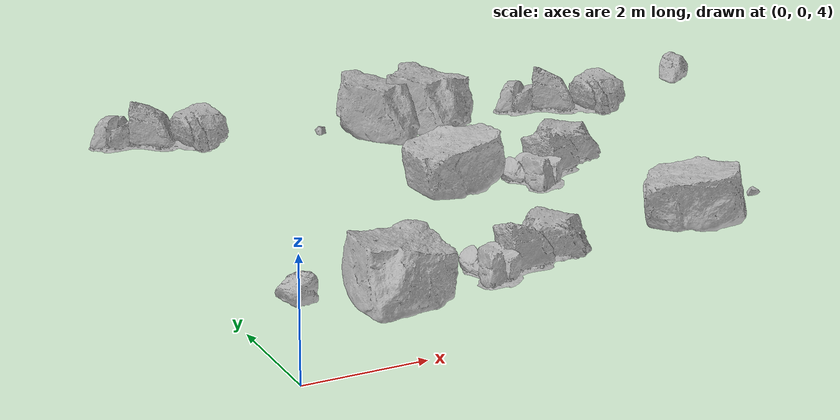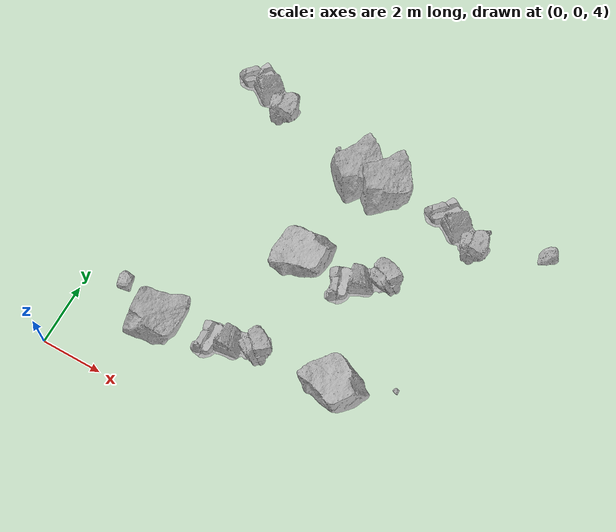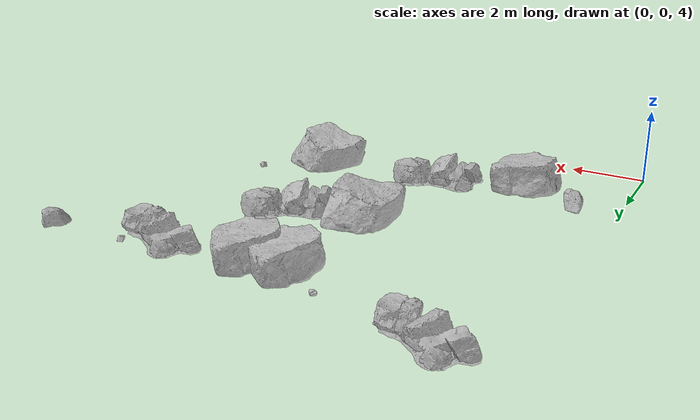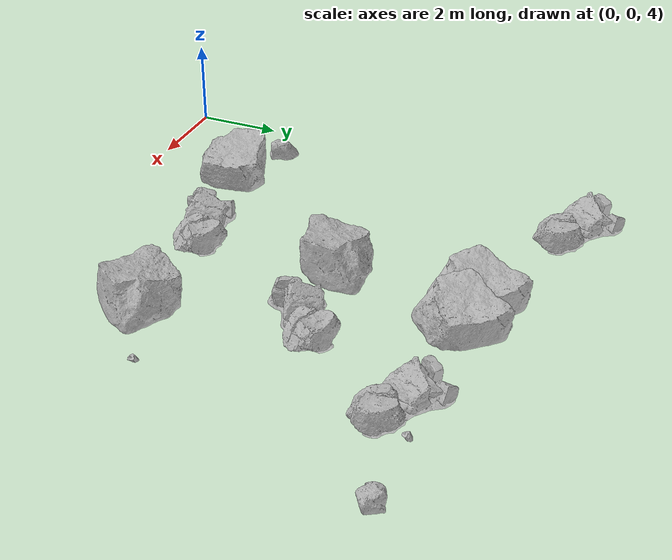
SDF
<sdf version="1.7">
 <world name="marsyard">
  <model name="Rock_2">
   <static>true</static>
   <pose>4.7668 10.0831 4.0000 0.0000 0.0000 2.5599</pose>
   <link name="link">
    <visual name="visual">
     <geometry><mesh><uri>package://rock_generator/rocks_ws/rock_9/meshes/rock_9.stl</uri></mesh></geometry>
    </visual>
    <collision name="collision">
     <geometry><mesh><uri>package://rock_generator/rocks_ws/rock_9/meshes/rock_9.stl</uri></mesh></geometry>
    </collision>
   </link>
  </model>
  <model name="Rock_6">
   <static>true</static>
   <pose>1.2115 2.8996 4.0000 0.0000 0.0000 -0.3242</pose>
   <link name="link">
    <visual name="visual">
     <geometry><mesh><uri>package://rock_generator/rocks_ws/rock_3/meshes/rock_3.stl</uri></mesh></geometry>
    </visual>
    <collision name="collision">
     <geometry><mesh><uri>package://rock_generator/rocks_ws/rock_3/meshes/rock_3.stl</uri></mesh></geometry>
    </collision>
   </link>
  </model>
  <model name="Rock_7">
   <static>true</static>
   <pose>9.5039 9.4151 4.0000 0.0000 0.0000 2.7537</pose>
   <link name="link">
    <visual name="visual">
     <geometry><mesh><uri>package://rock_generator/rocks_ws/rock_2/meshes/rock_2.stl</uri></mesh></geometry>
    </visual>
    <collision name="collision">
     <geometry><mesh><uri>package://rock_generator/rocks_ws/rock_2/meshes/rock_2.stl</uri></mesh></geometry>
    </collision>
   </link>
  </model>
  <model name="Rock_17">
   <static>true</static>
   <pose>1.9425 10.7229 4.0000 0.0000 0.0000 2.7339</pose>
   <link name="link">
    <visual name="visual">
     <geometry><mesh><uri>package://rock_generator/rocks_ws/rock_2/meshes/rock_2.stl</uri></mesh></geometry>
    </visual>
    <collision name="collision">
     <geometry><mesh><uri>package://rock_generator/rocks_ws/rock_2/meshes/rock_2.stl</uri></mesh></geometry>
    </collision>
   </link>
  </model>
  <model name="Rock_25">
   <static>true</static>
   <pose>10.1469 3.8750 4.0000 0.0000 0.0000 0.0582</pose>
   <link name="link">
    <visual name="visual">
     <geometry><mesh><uri>package://rock_generator/rocks_ws/rock_9/meshes/rock_9.stl</uri></mesh></geometry>
    </visual>
    <collision name="collision">
     <geometry><mesh><uri>package://rock_generator/rocks_ws/rock_9/meshes/rock_9.stl</uri></mesh></geometry>
    </collision>
   </link>
  </model>
  <model name="Rock_37">
   <static>true</static>
   <pose>2.6648 2.4476 4.0000 0.0000 0.0000 -0.7183</pose>
   <link name="link">
    <visual name="visual">
     <geometry><mesh><uri>package://rock_generator/rocks_ws/rock_1/meshes/rock_1.stl</uri></mesh></geometry>
    </visual>
    <collision name="collision">
     <geometry><mesh><uri>package://rock_generator/rocks_ws/rock_1/meshes/rock_1.stl</uri></mesh></geometry>
    </collision>
   </link>
  </model>
  <model name="Rock_43">
   <static>true</static>
   <pose>6.6434 9.7408 4.0000 0.0000 0.0000 -0.0959</pose>
   <link name="link">
    <visual name="visual">
     <geometry><mesh><uri>package://rock_generator/rocks_ws/rock_1/meshes/rock_1.stl</uri></mesh></geometry>
    </visual>
    <collision name="collision">
     <geometry><mesh><uri>package://rock_generator/rocks_ws/rock_1/meshes/rock_1.stl</uri></mesh></geometry>
    </collision>
   </link>
  </model>
  <model name="Rock_96">
   <static>true</static>
   <pose>10.2888 9.8680 4.0000 0.0000 0.0000 -0.6900</pose>
   <link name="link">
    <visual name="visual">
     <geometry><mesh><uri>package://rock_generator/rocks_ws/rock_9/meshes/rock_9.stl</uri></mesh></geometry>
    </visual>
    <collision name="collision">
     <geometry><mesh><uri>package://rock_generator/rocks_ws/rock_9/meshes/rock_9.stl</uri></mesh></geometry>
    </collision>
   </link>
  </model>
  <model name="Rock_108">
   <static>true</static>
   <pose>8.3488 2.9398 4.0000 0.0000 0.0000 1.7999</pose>
   <link name="link">
    <visual name="visual">
     <geometry><mesh><uri>package://rock_generator/rocks_ws/rock_1/meshes/rock_1.stl</uri></mesh></geometry>
    </visual>
    <collision name="collision">
     <geometry><mesh><uri>package://rock_generator/rocks_ws/rock_1/meshes/rock_1.stl</uri></mesh></geometry>
    </collision>
   </link>
  </model>
  <model name="Rock_118">
   <static>true</static>
   <pose>5.1473 2.7762 4.0000 0.0000 0.0000 -2.7892</pose>
   <link name="link">
    <visual name="visual">
     <geometry><mesh><uri>package://rock_generator/rocks_ws/rock_2/meshes/rock_2.stl</uri></mesh></geometry>
    </visual>
    <collision name="collision">
     <geometry><mesh><uri>package://rock_generator/rocks_ws/rock_2/meshes/rock_2.stl</uri></mesh></geometry>
    </collision>
   </link>
  </model>
  <model name="Rock_126">
   <static>true</static>
   <pose>5.5634 6.1038 4.0000 0.0000 0.0000 2.3834</pose>
   <link name="link">
    <visual name="visual">
     <geometry><mesh><uri>package://rock_generator/rocks_ws/rock_1/meshes/rock_1.stl</uri></mesh></geometry>
    </visual>
    <collision name="collision">
     <geometry><mesh><uri>package://rock_generator/rocks_ws/rock_1/meshes/rock_1.stl</uri></mesh></geometry>
    </collision>
   </link>
  </model>
  <model name="Rock_141">
   <static>true</static>
   <pose>7.6724 6.5081 4.0000 0.0000 0.0000 -2.4751</pose>
   <link name="link">
    <visual name="visual">
     <geometry><mesh><uri>package://rock_generator/rocks_ws/rock_2/meshes/rock_2.stl</uri></mesh></geometry>
    </visual>
    <collision name="collision">
     <geometry><mesh><uri>package://rock_generator/rocks_ws/rock_2/meshes/rock_2.stl</uri></mesh></geometry>
    </collision>
   </link>
  </model>
  <model name="Rock_144">
   <static>true</static>
   <pose>12.2658 9.9928 4.0000 0.0000 0.0000 1.6437</pose>
   <link name="link">
    <visual name="visual">
     <geometry><mesh><uri>package://rock_generator/rocks_ws/rock_3/meshes/rock_3.stl</uri></mesh></geometry>
    </visual>
    <collision name="collision">
     <geometry><mesh><uri>package://rock_generator/rocks_ws/rock_3/meshes/rock_3.stl</uri></mesh></geometry>
    </collision>
   </link>
  </model>
  <model name="Rock_154">
   <static>true</static>
   <pose>5.6185 9.7334 4.0000 0.0000 0.0000 0.0988</pose>
   <link name="link">
    <visual name="visual">
     <geometry><mesh><uri>package://rock_generator/rocks_ws/rock_1/meshes/rock_1.stl</uri></mesh></geometry>
    </visual>
    <collision name="collision">
     <geometry><mesh><uri>package://rock_generator/rocks_ws/rock_1/meshes/rock_1.stl</uri></mesh></geometry>
    </collision>
   </link>
  </model>
 </world>
</sdf>
